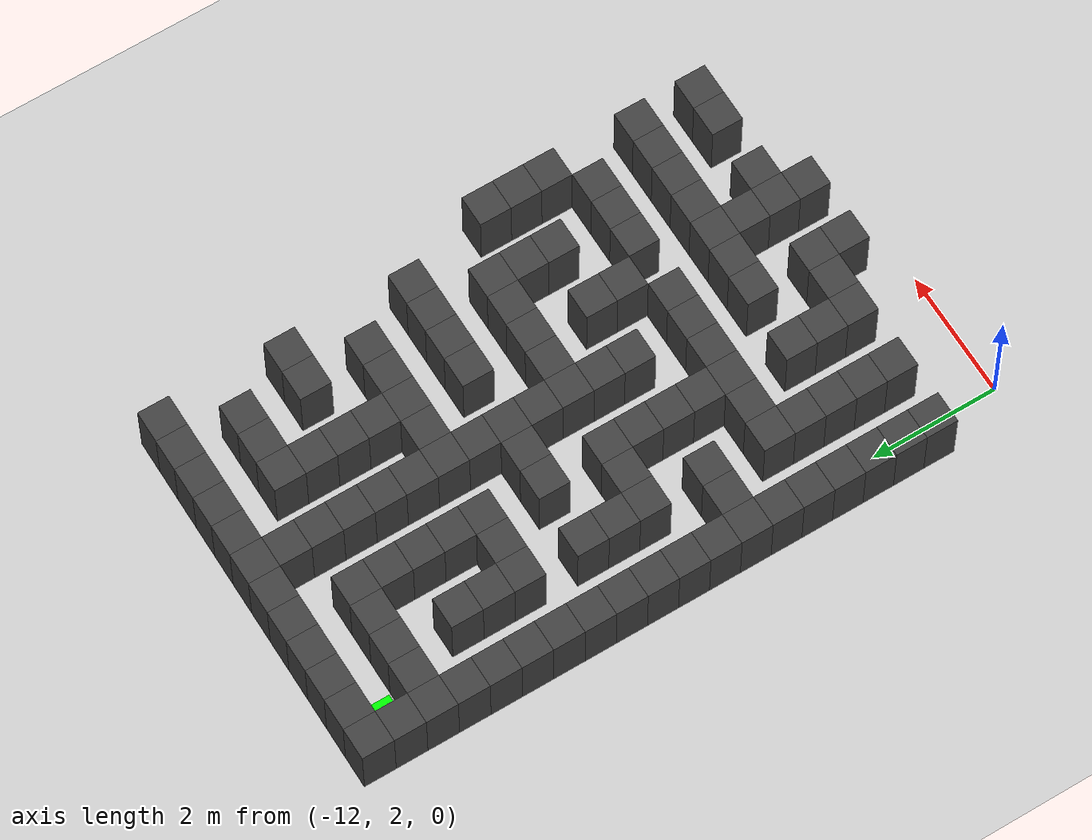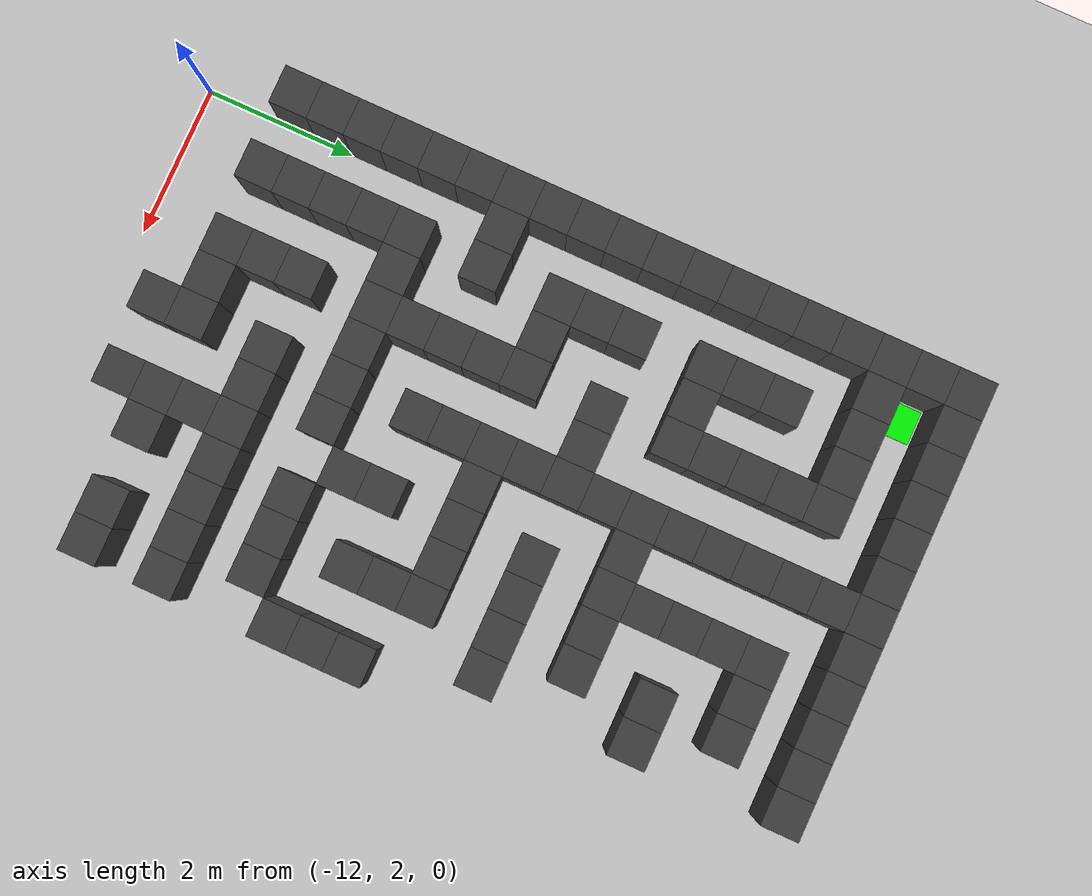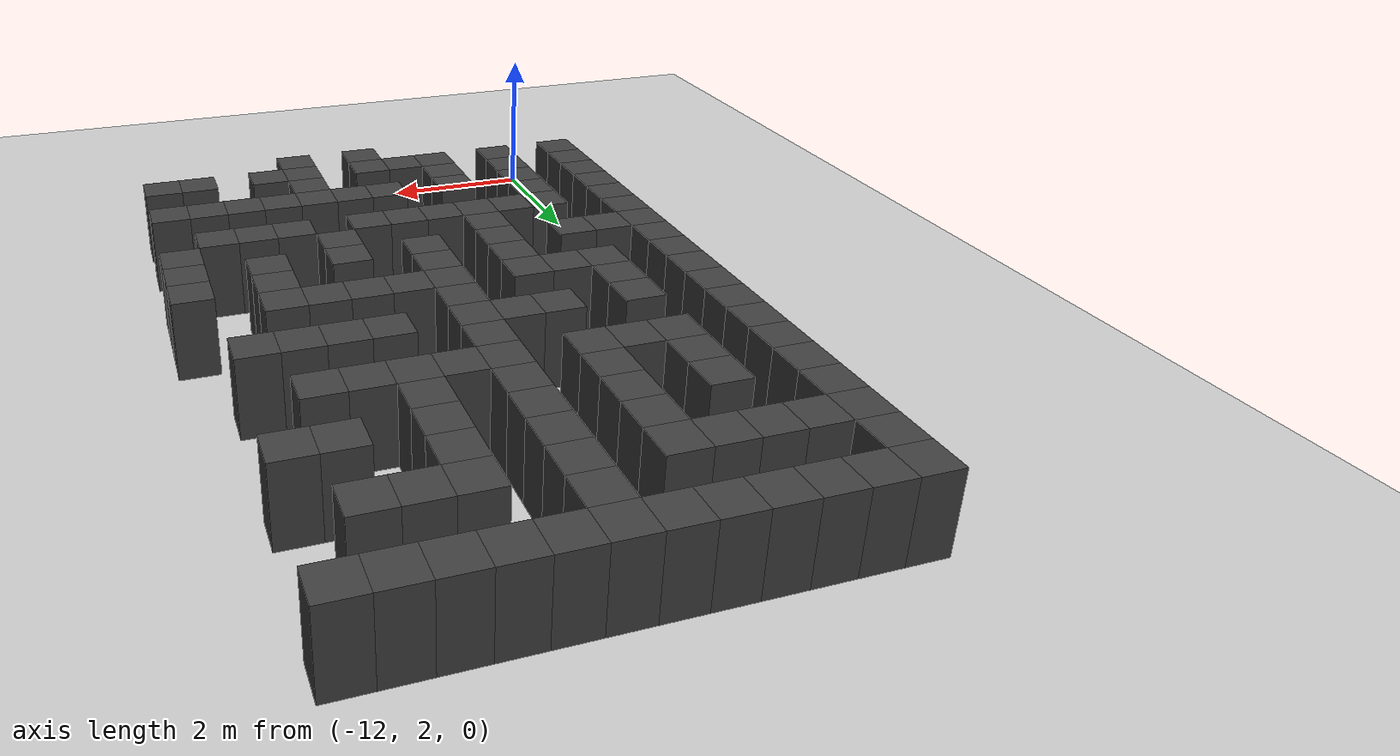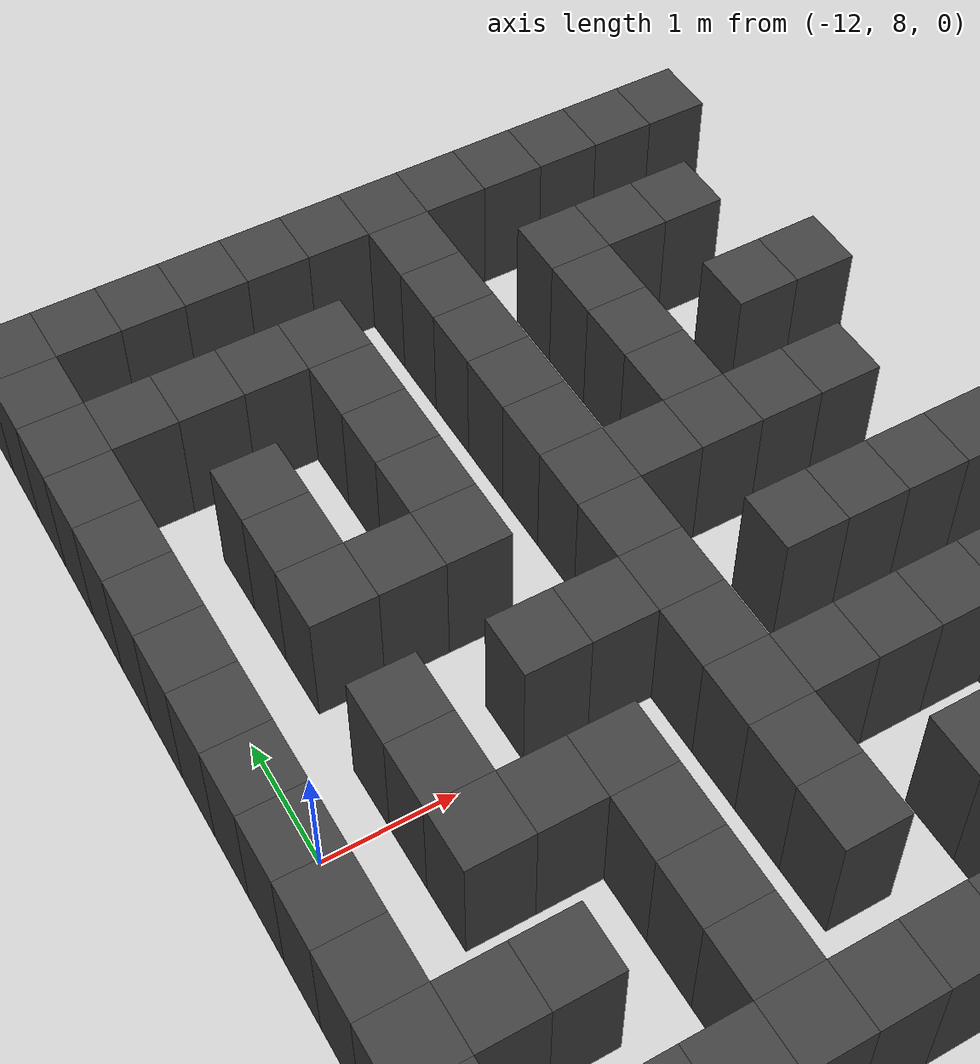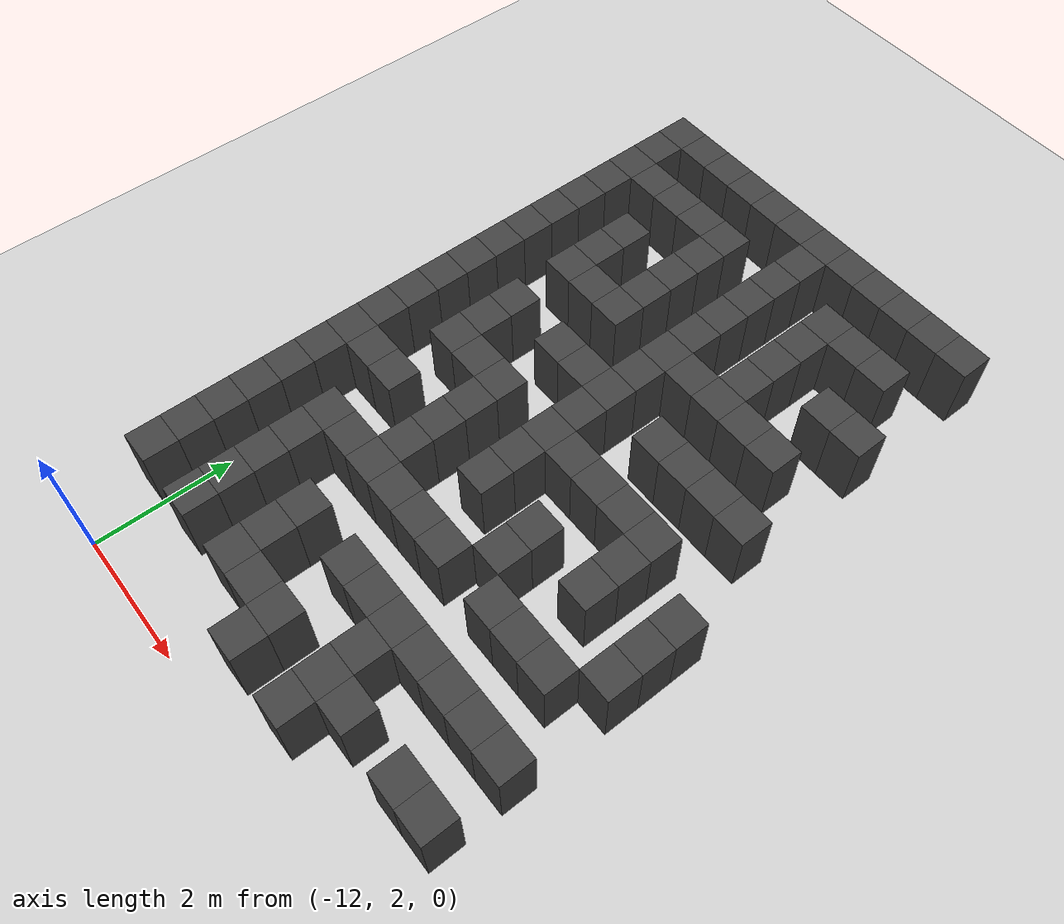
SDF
<sdf version="1.7">
 <world name="map_16884">
  <model name="ground_plane">
   <static>true</static>
   <link name="link">
    <collision name="collision">
     <geometry><plane><normal>0 0 1</normal><size>200 200</size></plane></geometry>
    </collision>
    <visual name="visual">
     <geometry><plane><normal>0 0 1</normal><size>200 200</size></plane></geometry>
     <material><ambient>0.8 0.8 0.8 1</ambient><diffuse>0.8 0.8 0.8 1</diffuse></material>
    </visual>
   </link>
  </model>
  <model name="maze_environment">
   <static>true</static>
   <link name="wall_0">
    <pose>-12.250 12.250 0.500 0 0 0</pose>
    <collision name="col"><geometry><box><size>0.5 0.5 1.0</size></box></geometry></collision>
    <visual name="vis">
     <geometry><box><size>0.5 0.5 1.0</size></box></geometry>
     <material><ambient>0.15 0.15 0.15 1</ambient><diffuse>0.25 0.25 0.25 1</diffuse></material>
    </visual>
   </link>
   <link name="wall_1">
    <pose>-11.750 12.250 0.500 0 0 0</pose>
    <collision name="col"><geometry><box><size>0.5 0.5 1.0</size></box></geometry></collision>
    <visual name="vis">
     <geometry><box><size>0.5 0.5 1.0</size></box></geometry>
     <material><ambient>0.15 0.15 0.15 1</ambient><diffuse>0.25 0.25 0.25 1</diffuse></material>
    </visual>
   </link>
   <link name="wall_2">
    <pose>-11.250 12.250 0.500 0 0 0</pose>
    <collision name="col"><geometry><box><size>0.5 0.5 1.0</size></box></geometry></collision>
    <visual name="vis">
     <geometry><box><size>0.5 0.5 1.0</size></box></geometry>
     <material><ambient>0.15 0.15 0.15 1</ambient><diffuse>0.25 0.25 0.25 1</diffuse></material>
    </visual>
   </link>
   <link name="wall_3">
    <pose>-10.750 12.250 0.500 0 0 0</pose>
    <collision name="col"><geometry><box><size>0.5 0.5 1.0</size></box></geometry></collision>
    <visual name="vis">
     <geometry><box><size>0.5 0.5 1.0</size></box></geometry>
     <material><ambient>0.15 0.15 0.15 1</ambient><diffuse>0.25 0.25 0.25 1</diffuse></material>
    </visual>
   </link>
   <link name="wall_4">
    <pose>-10.250 12.250 0.500 0 0 0</pose>
    <collision name="col"><geometry><box><size>0.5 0.5 1.0</size></box></geometry></collision>
    <visual name="vis">
     <geometry><box><size>0.5 0.5 1.0</size></box></geometry>
     <material><ambient>0.15 0.15 0.15 1</ambient><diffuse>0.25 0.25 0.25 1</diffuse></material>
    </visual>
   </link>
   <link name="wall_5">
    <pose>-9.750 12.250 0.500 0 0 0</pose>
    <collision name="col"><geometry><box><size>0.5 0.5 1.0</size></box></geometry></collision>
    <visual name="vis">
     <geometry><box><size>0.5 0.5 1.0</size></box></geometry>
     <material><ambient>0.15 0.15 0.15 1</ambient><diffuse>0.25 0.25 0.25 1</diffuse></material>
    </visual>
   </link>
   <link name="wall_6">
    <pose>-9.250 12.250 0.500 0 0 0</pose>
    <collision name="col"><geometry><box><size>0.5 0.5 1.0</size></box></geometry></collision>
    <visual name="vis">
     <geometry><box><size>0.5 0.5 1.0</size></box></geometry>
     <material><ambient>0.15 0.15 0.15 1</ambient><diffuse>0.25 0.25 0.25 1</diffuse></material>
    </visual>
   </link>
   <link name="wall_7">
    <pose>-8.750 12.250 0.500 0 0 0</pose>
    <collision name="col"><geometry><box><size>0.5 0.5 1.0</size></box></geometry></collision>
    <visual name="vis">
     <geometry><box><size>0.5 0.5 1.0</size></box></geometry>
     <material><ambient>0.15 0.15 0.15 1</ambient><diffuse>0.25 0.25 0.25 1</diffuse></material>
    </visual>
   </link>
   <link name="wall_8">
    <pose>-8.250 12.250 0.500 0 0 0</pose>
    <collision name="col"><geometry><box><size>0.5 0.5 1.0</size></box></geometry></collision>
    <visual name="vis">
     <geometry><box><size>0.5 0.5 1.0</size></box></geometry>
     <material><ambient>0.15 0.15 0.15 1</ambient><diffuse>0.25 0.25 0.25 1</diffuse></material>
    </visual>
   </link>
   <link name="wall_9">
    <pose>-7.750 12.250 0.500 0 0 0</pose>
    <collision name="col"><geometry><box><size>0.5 0.5 1.0</size></box></geometry></collision>
    <visual name="vis">
     <geometry><box><size>0.5 0.5 1.0</size></box></geometry>
     <material><ambient>0.15 0.15 0.15 1</ambient><diffuse>0.25 0.25 0.25 1</diffuse></material>
    </visual>
   </link>
   <link name="wall_10">
    <pose>-7.250 12.250 0.500 0 0 0</pose>
    <collision name="col"><geometry><box><size>0.5 0.5 1.0</size></box></geometry></collision>
    <visual name="vis">
     <geometry><box><size>0.5 0.5 1.0</size></box></geometry>
     <material><ambient>0.15 0.15 0.15 1</ambient><diffuse>0.25 0.25 0.25 1</diffuse></material>
    </visual>
   </link>
   <link name="wall_11">
    <pose>-6.750 12.250 0.500 0 0 0</pose>
    <collision name="col"><geometry><box><size>0.5 0.5 1.0</size></box></geometry></collision>
    <visual name="vis">
     <geometry><box><size>0.5 0.5 1.0</size></box></geometry>
     <material><ambient>0.15 0.15 0.15 1</ambient><diffuse>0.25 0.25 0.25 1</diffuse></material>
    </visual>
   </link>
   <link name="wall_50">
    <pose>-12.250 11.750 0.500 0 0 0</pose>
    <collision name="col"><geometry><box><size>0.5 0.5 1.0</size></box></geometry></collision>
    <visual name="vis">
     <geometry><box><size>0.5 0.5 1.0</size></box></geometry>
     <material><ambient>0.15 0.15 0.15 1</ambient><diffuse>0.25 0.25 0.25 1</diffuse></material>
    </visual>
   </link>
   <link name="wall_51">
    <pose>-9.250 11.750 0.500 0 0 0</pose>
    <collision name="col"><geometry><box><size>0.5 0.5 1.0</size></box></geometry></collision>
    <visual name="vis">
     <geometry><box><size>0.5 0.5 1.0</size></box></geometry>
     <material><ambient>0.15 0.15 0.15 1</ambient><diffuse>0.25 0.25 0.25 1</diffuse></material>
    </visual>
   </link>
   <link name="wall_58">
    <pose>-12.250 11.250 0.500 0 0 0</pose>
    <collision name="col"><geometry><box><size>0.5 0.5 1.0</size></box></geometry></collision>
    <visual name="vis">
     <geometry><box><size>0.5 0.5 1.0</size></box></geometry>
     <material><ambient>0.15 0.15 0.15 1</ambient><diffuse>0.25 0.25 0.25 1</diffuse></material>
    </visual>
   </link>
   <link name="wall_59">
    <pose>-11.750 11.250 0.500 0 0 0</pose>
    <collision name="col"><geometry><box><size>0.5 0.5 1.0</size></box></geometry></collision>
    <visual name="vis">
     <geometry><box><size>0.5 0.5 1.0</size></box></geometry>
     <material><ambient>0.15 0.15 0.15 1</ambient><diffuse>0.25 0.25 0.25 1</diffuse></material>
    </visual>
   </link>
   <link name="wall_60">
    <pose>-11.250 11.250 0.500 0 0 0</pose>
    <collision name="col"><geometry><box><size>0.5 0.5 1.0</size></box></geometry></collision>
    <visual name="vis">
     <geometry><box><size>0.5 0.5 1.0</size></box></geometry>
     <material><ambient>0.15 0.15 0.15 1</ambient><diffuse>0.25 0.25 0.25 1</diffuse></material>
    </visual>
   </link>
   <link name="wall_61">
    <pose>-10.750 11.250 0.500 0 0 0</pose>
    <collision name="col"><geometry><box><size>0.5 0.5 1.0</size></box></geometry></collision>
    <visual name="vis">
     <geometry><box><size>0.5 0.5 1.0</size></box></geometry>
     <material><ambient>0.15 0.15 0.15 1</ambient><diffuse>0.25 0.25 0.25 1</diffuse></material>
    </visual>
   </link>
   <link name="wall_62">
    <pose>-10.250 11.250 0.500 0 0 0</pose>
    <collision name="col"><geometry><box><size>0.5 0.5 1.0</size></box></geometry></collision>
    <visual name="vis">
     <geometry><box><size>0.5 0.5 1.0</size></box></geometry>
     <material><ambient>0.15 0.15 0.15 1</ambient><diffuse>0.25 0.25 0.25 1</diffuse></material>
    </visual>
   </link>
   <link name="wall_63">
    <pose>-9.250 11.250 0.500 0 0 0</pose>
    <collision name="col"><geometry><box><size>0.5 0.5 1.0</size></box></geometry></collision>
    <visual name="vis">
     <geometry><box><size>0.5 0.5 1.0</size></box></geometry>
     <material><ambient>0.15 0.15 0.15 1</ambient><diffuse>0.25 0.25 0.25 1</diffuse></material>
    </visual>
   </link>
   <link name="wall_64">
    <pose>-8.250 11.250 0.500 0 0 0</pose>
    <collision name="col"><geometry><box><size>0.5 0.5 1.0</size></box></geometry></collision>
    <visual name="vis">
     <geometry><box><size>0.5 0.5 1.0</size></box></geometry>
     <material><ambient>0.15 0.15 0.15 1</ambient><diffuse>0.25 0.25 0.25 1</diffuse></material>
    </visual>
   </link>
   <link name="wall_65">
    <pose>-7.750 11.250 0.500 0 0 0</pose>
    <collision name="col"><geometry><box><size>0.5 0.5 1.0</size></box></geometry></collision>
    <visual name="vis">
     <geometry><box><size>0.5 0.5 1.0</size></box></geometry>
     <material><ambient>0.15 0.15 0.15 1</ambient><diffuse>0.25 0.25 0.25 1</diffuse></material>
    </visual>
   </link>
   <link name="wall_66">
    <pose>-7.250 11.250 0.500 0 0 0</pose>
    <collision name="col"><geometry><box><size>0.5 0.5 1.0</size></box></geometry></collision>
    <visual name="vis">
     <geometry><box><size>0.5 0.5 1.0</size></box></geometry>
     <material><ambient>0.15 0.15 0.15 1</ambient><diffuse>0.25 0.25 0.25 1</diffuse></material>
    </visual>
   </link>
   <link name="wall_94">
    <pose>-12.250 10.750 0.500 0 0 0</pose>
    <collision name="col"><geometry><box><size>0.5 0.5 1.0</size></box></geometry></collision>
    <visual name="vis">
     <geometry><box><size>0.5 0.5 1.0</size></box></geometry>
     <material><ambient>0.15 0.15 0.15 1</ambient><diffuse>0.25 0.25 0.25 1</diffuse></material>
    </visual>
   </link>
   <link name="wall_95">
    <pose>-10.250 10.750 0.500 0 0 0</pose>
    <collision name="col"><geometry><box><size>0.5 0.5 1.0</size></box></geometry></collision>
    <visual name="vis">
     <geometry><box><size>0.5 0.5 1.0</size></box></geometry>
     <material><ambient>0.15 0.15 0.15 1</ambient><diffuse>0.25 0.25 0.25 1</diffuse></material>
    </visual>
   </link>
   <link name="wall_96">
    <pose>-9.250 10.750 0.500 0 0 0</pose>
    <collision name="col"><geometry><box><size>0.5 0.5 1.0</size></box></geometry></collision>
    <visual name="vis">
     <geometry><box><size>0.5 0.5 1.0</size></box></geometry>
     <material><ambient>0.15 0.15 0.15 1</ambient><diffuse>0.25 0.25 0.25 1</diffuse></material>
    </visual>
   </link>
   <link name="wall_97">
    <pose>-8.250 10.750 0.500 0 0 0</pose>
    <collision name="col"><geometry><box><size>0.5 0.5 1.0</size></box></geometry></collision>
    <visual name="vis">
     <geometry><box><size>0.5 0.5 1.0</size></box></geometry>
     <material><ambient>0.15 0.15 0.15 1</ambient><diffuse>0.25 0.25 0.25 1</diffuse></material>
    </visual>
   </link>
   <link name="wall_107">
    <pose>-12.250 10.250 0.500 0 0 0</pose>
    <collision name="col"><geometry><box><size>0.5 0.5 1.0</size></box></geometry></collision>
    <visual name="vis">
     <geometry><box><size>0.5 0.5 1.0</size></box></geometry>
     <material><ambient>0.15 0.15 0.15 1</ambient><diffuse>0.25 0.25 0.25 1</diffuse></material>
    </visual>
   </link>
   <link name="wall_108">
    <pose>-11.250 10.250 0.500 0 0 0</pose>
    <collision name="col"><geometry><box><size>0.5 0.5 1.0</size></box></geometry></collision>
    <visual name="vis">
     <geometry><box><size>0.5 0.5 1.0</size></box></geometry>
     <material><ambient>0.15 0.15 0.15 1</ambient><diffuse>0.25 0.25 0.25 1</diffuse></material>
    </visual>
   </link>
   <link name="wall_109">
    <pose>-10.250 10.250 0.500 0 0 0</pose>
    <collision name="col"><geometry><box><size>0.5 0.5 1.0</size></box></geometry></collision>
    <visual name="vis">
     <geometry><box><size>0.5 0.5 1.0</size></box></geometry>
     <material><ambient>0.15 0.15 0.15 1</ambient><diffuse>0.25 0.25 0.25 1</diffuse></material>
    </visual>
   </link>
   <link name="wall_110">
    <pose>-9.250 10.250 0.500 0 0 0</pose>
    <collision name="col"><geometry><box><size>0.5 0.5 1.0</size></box></geometry></collision>
    <visual name="vis">
     <geometry><box><size>0.5 0.5 1.0</size></box></geometry>
     <material><ambient>0.15 0.15 0.15 1</ambient><diffuse>0.25 0.25 0.25 1</diffuse></material>
    </visual>
   </link>
   <link name="wall_111">
    <pose>-8.250 10.250 0.500 0 0 0</pose>
    <collision name="col"><geometry><box><size>0.5 0.5 1.0</size></box></geometry></collision>
    <visual name="vis">
     <geometry><box><size>0.5 0.5 1.0</size></box></geometry>
     <material><ambient>0.15 0.15 0.15 1</ambient><diffuse>0.25 0.25 0.25 1</diffuse></material>
    </visual>
   </link>
   <link name="wall_112">
    <pose>-7.250 10.250 0.500 0 0 0</pose>
    <collision name="col"><geometry><box><size>0.5 0.5 1.0</size></box></geometry></collision>
    <visual name="vis">
     <geometry><box><size>0.5 0.5 1.0</size></box></geometry>
     <material><ambient>0.15 0.15 0.15 1</ambient><diffuse>0.25 0.25 0.25 1</diffuse></material>
    </visual>
   </link>
   <link name="wall_113">
    <pose>-6.750 10.250 0.500 0 0 0</pose>
    <collision name="col"><geometry><box><size>0.5 0.5 1.0</size></box></geometry></collision>
    <visual name="vis">
     <geometry><box><size>0.5 0.5 1.0</size></box></geometry>
     <material><ambient>0.15 0.15 0.15 1</ambient><diffuse>0.25 0.25 0.25 1</diffuse></material>
    </visual>
   </link>
   <link name="wall_142">
    <pose>-12.250 9.750 0.500 0 0 0</pose>
    <collision name="col"><geometry><box><size>0.5 0.5 1.0</size></box></geometry></collision>
    <visual name="vis">
     <geometry><box><size>0.5 0.5 1.0</size></box></geometry>
     <material><ambient>0.15 0.15 0.15 1</ambient><diffuse>0.25 0.25 0.25 1</diffuse></material>
    </visual>
   </link>
   <link name="wall_143">
    <pose>-11.250 9.750 0.500 0 0 0</pose>
    <collision name="col"><geometry><box><size>0.5 0.5 1.0</size></box></geometry></collision>
    <visual name="vis">
     <geometry><box><size>0.5 0.5 1.0</size></box></geometry>
     <material><ambient>0.15 0.15 0.15 1</ambient><diffuse>0.25 0.25 0.25 1</diffuse></material>
    </visual>
   </link>
   <link name="wall_144">
    <pose>-10.250 9.750 0.500 0 0 0</pose>
    <collision name="col"><geometry><box><size>0.5 0.5 1.0</size></box></geometry></collision>
    <visual name="vis">
     <geometry><box><size>0.5 0.5 1.0</size></box></geometry>
     <material><ambient>0.15 0.15 0.15 1</ambient><diffuse>0.25 0.25 0.25 1</diffuse></material>
    </visual>
   </link>
   <link name="wall_145">
    <pose>-9.250 9.750 0.500 0 0 0</pose>
    <collision name="col"><geometry><box><size>0.5 0.5 1.0</size></box></geometry></collision>
    <visual name="vis">
     <geometry><box><size>0.5 0.5 1.0</size></box></geometry>
     <material><ambient>0.15 0.15 0.15 1</ambient><diffuse>0.25 0.25 0.25 1</diffuse></material>
    </visual>
   </link>
   <link name="wall_146">
    <pose>-8.250 9.750 0.500 0 0 0</pose>
    <collision name="col"><geometry><box><size>0.5 0.5 1.0</size></box></geometry></collision>
    <visual name="vis">
     <geometry><box><size>0.5 0.5 1.0</size></box></geometry>
     <material><ambient>0.15 0.15 0.15 1</ambient><diffuse>0.25 0.25 0.25 1</diffuse></material>
    </visual>
   </link>
   <link name="wall_158">
    <pose>-12.250 9.250 0.500 0 0 0</pose>
    <collision name="col"><geometry><box><size>0.5 0.5 1.0</size></box></geometry></collision>
    <visual name="vis">
     <geometry><box><size>0.5 0.5 1.0</size></box></geometry>
     <material><ambient>0.15 0.15 0.15 1</ambient><diffuse>0.25 0.25 0.25 1</diffuse></material>
    </visual>
   </link>
   <link name="wall_159">
    <pose>-11.250 9.250 0.500 0 0 0</pose>
    <collision name="col"><geometry><box><size>0.5 0.5 1.0</size></box></geometry></collision>
    <visual name="vis">
     <geometry><box><size>0.5 0.5 1.0</size></box></geometry>
     <material><ambient>0.15 0.15 0.15 1</ambient><diffuse>0.25 0.25 0.25 1</diffuse></material>
    </visual>
   </link>
   <link name="wall_160">
    <pose>-10.750 9.250 0.500 0 0 0</pose>
    <collision name="col"><geometry><box><size>0.5 0.5 1.0</size></box></geometry></collision>
    <visual name="vis">
     <geometry><box><size>0.5 0.5 1.0</size></box></geometry>
     <material><ambient>0.15 0.15 0.15 1</ambient><diffuse>0.25 0.25 0.25 1</diffuse></material>
    </visual>
   </link>
   <link name="wall_161">
    <pose>-10.250 9.250 0.500 0 0 0</pose>
    <collision name="col"><geometry><box><size>0.5 0.5 1.0</size></box></geometry></collision>
    <visual name="vis">
     <geometry><box><size>0.5 0.5 1.0</size></box></geometry>
     <material><ambient>0.15 0.15 0.15 1</ambient><diffuse>0.25 0.25 0.25 1</diffuse></material>
    </visual>
   </link>
   <link name="wall_162">
    <pose>-9.250 9.250 0.500 0 0 0</pose>
    <collision name="col"><geometry><box><size>0.5 0.5 1.0</size></box></geometry></collision>
    <visual name="vis">
     <geometry><box><size>0.5 0.5 1.0</size></box></geometry>
     <material><ambient>0.15 0.15 0.15 1</ambient><diffuse>0.25 0.25 0.25 1</diffuse></material>
    </visual>
   </link>
   <link name="wall_163">
    <pose>-8.750 9.250 0.500 0 0 0</pose>
    <collision name="col"><geometry><box><size>0.5 0.5 1.0</size></box></geometry></collision>
    <visual name="vis">
     <geometry><box><size>0.5 0.5 1.0</size></box></geometry>
     <material><ambient>0.15 0.15 0.15 1</ambient><diffuse>0.25 0.25 0.25 1</diffuse></material>
    </visual>
   </link>
   <link name="wall_164">
    <pose>-8.250 9.250 0.500 0 0 0</pose>
    <collision name="col"><geometry><box><size>0.5 0.5 1.0</size></box></geometry></collision>
    <visual name="vis">
     <geometry><box><size>0.5 0.5 1.0</size></box></geometry>
     <material><ambient>0.15 0.15 0.15 1</ambient><diffuse>0.25 0.25 0.25 1</diffuse></material>
    </visual>
   </link>
   <link name="wall_165">
    <pose>-7.750 9.250 0.500 0 0 0</pose>
    <collision name="col"><geometry><box><size>0.5 0.5 1.0</size></box></geometry></collision>
    <visual name="vis">
     <geometry><box><size>0.5 0.5 1.0</size></box></geometry>
     <material><ambient>0.15 0.15 0.15 1</ambient><diffuse>0.25 0.25 0.25 1</diffuse></material>
    </visual>
   </link>
   <link name="wall_166">
    <pose>-7.250 9.250 0.500 0 0 0</pose>
    <collision name="col"><geometry><box><size>0.5 0.5 1.0</size></box></geometry></collision>
    <visual name="vis">
     <geometry><box><size>0.5 0.5 1.0</size></box></geometry>
     <material><ambient>0.15 0.15 0.15 1</ambient><diffuse>0.25 0.25 0.25 1</diffuse></material>
    </visual>
   </link>
   <link name="wall_194">
    <pose>-12.250 8.750 0.500 0 0 0</pose>
    <collision name="col"><geometry><box><size>0.5 0.5 1.0</size></box></geometry></collision>
    <visual name="vis">
     <geometry><box><size>0.5 0.5 1.0</size></box></geometry>
     <material><ambient>0.15 0.15 0.15 1</ambient><diffuse>0.25 0.25 0.25 1</diffuse></material>
    </visual>
   </link>
   <link name="wall_195">
    <pose>-9.250 8.750 0.500 0 0 0</pose>
    <collision name="col"><geometry><box><size>0.5 0.5 1.0</size></box></geometry></collision>
    <visual name="vis">
     <geometry><box><size>0.5 0.5 1.0</size></box></geometry>
     <material><ambient>0.15 0.15 0.15 1</ambient><diffuse>0.25 0.25 0.25 1</diffuse></material>
    </visual>
   </link>
   <link name="wall_207">
    <pose>-12.250 8.250 0.500 0 0 0</pose>
    <collision name="col"><geometry><box><size>0.5 0.5 1.0</size></box></geometry></collision>
    <visual name="vis">
     <geometry><box><size>0.5 0.5 1.0</size></box></geometry>
     <material><ambient>0.15 0.15 0.15 1</ambient><diffuse>0.25 0.25 0.25 1</diffuse></material>
    </visual>
   </link>
   <link name="wall_208">
    <pose>-11.250 8.250 0.500 0 0 0</pose>
    <collision name="col"><geometry><box><size>0.5 0.5 1.0</size></box></geometry></collision>
    <visual name="vis">
     <geometry><box><size>0.5 0.5 1.0</size></box></geometry>
     <material><ambient>0.15 0.15 0.15 1</ambient><diffuse>0.25 0.25 0.25 1</diffuse></material>
    </visual>
   </link>
   <link name="wall_209">
    <pose>-10.250 8.250 0.500 0 0 0</pose>
    <collision name="col"><geometry><box><size>0.5 0.5 1.0</size></box></geometry></collision>
    <visual name="vis">
     <geometry><box><size>0.5 0.5 1.0</size></box></geometry>
     <material><ambient>0.15 0.15 0.15 1</ambient><diffuse>0.25 0.25 0.25 1</diffuse></material>
    </visual>
   </link>
   <link name="wall_210">
    <pose>-9.750 8.250 0.500 0 0 0</pose>
    <collision name="col"><geometry><box><size>0.5 0.5 1.0</size></box></geometry></collision>
    <visual name="vis">
     <geometry><box><size>0.5 0.5 1.0</size></box></geometry>
     <material><ambient>0.15 0.15 0.15 1</ambient><diffuse>0.25 0.25 0.25 1</diffuse></material>
    </visual>
   </link>
   <link name="wall_211">
    <pose>-9.250 8.250 0.500 0 0 0</pose>
    <collision name="col"><geometry><box><size>0.5 0.5 1.0</size></box></geometry></collision>
    <visual name="vis">
     <geometry><box><size>0.5 0.5 1.0</size></box></geometry>
     <material><ambient>0.15 0.15 0.15 1</ambient><diffuse>0.25 0.25 0.25 1</diffuse></material>
    </visual>
   </link>
   <link name="wall_212">
    <pose>-8.250 8.250 0.500 0 0 0</pose>
    <collision name="col"><geometry><box><size>0.5 0.5 1.0</size></box></geometry></collision>
    <visual name="vis">
     <geometry><box><size>0.5 0.5 1.0</size></box></geometry>
     <material><ambient>0.15 0.15 0.15 1</ambient><diffuse>0.25 0.25 0.25 1</diffuse></material>
    </visual>
   </link>
   <link name="wall_213">
    <pose>-7.750 8.250 0.500 0 0 0</pose>
    <collision name="col"><geometry><box><size>0.5 0.5 1.0</size></box></geometry></collision>
    <visual name="vis">
     <geometry><box><size>0.5 0.5 1.0</size></box></geometry>
     <material><ambient>0.15 0.15 0.15 1</ambient><diffuse>0.25 0.25 0.25 1</diffuse></material>
    </visual>
   </link>
   <link name="wall_214">
    <pose>-7.250 8.250 0.500 0 0 0</pose>
    <collision name="col"><geometry><box><size>0.5 0.5 1.0</size></box></geometry></collision>
    <visual name="vis">
     <geometry><box><size>0.5 0.5 1.0</size></box></geometry>
     <material><ambient>0.15 0.15 0.15 1</ambient><diffuse>0.25 0.25 0.25 1</diffuse></material>
    </visual>
   </link>
   <link name="wall_215">
    <pose>-6.750 8.250 0.500 0 0 0</pose>
    <collision name="col"><geometry><box><size>0.5 0.5 1.0</size></box></geometry></collision>
    <visual name="vis">
     <geometry><box><size>0.5 0.5 1.0</size></box></geometry>
     <material><ambient>0.15 0.15 0.15 1</ambient><diffuse>0.25 0.25 0.25 1</diffuse></material>
    </visual>
   </link>
   <link name="wall_241">
    <pose>-12.250 7.750 0.500 0 0 0</pose>
    <collision name="col"><geometry><box><size>0.5 0.5 1.0</size></box></geometry></collision>
    <visual name="vis">
     <geometry><box><size>0.5 0.5 1.0</size></box></geometry>
     <material><ambient>0.15 0.15 0.15 1</ambient><diffuse>0.25 0.25 0.25 1</diffuse></material>
    </visual>
   </link>
   <link name="wall_242">
    <pose>-11.250 7.750 0.500 0 0 0</pose>
    <collision name="col"><geometry><box><size>0.5 0.5 1.0</size></box></geometry></collision>
    <visual name="vis">
     <geometry><box><size>0.5 0.5 1.0</size></box></geometry>
     <material><ambient>0.15 0.15 0.15 1</ambient><diffuse>0.25 0.25 0.25 1</diffuse></material>
    </visual>
   </link>
   <link name="wall_243">
    <pose>-9.250 7.750 0.500 0 0 0</pose>
    <collision name="col"><geometry><box><size>0.5 0.5 1.0</size></box></geometry></collision>
    <visual name="vis">
     <geometry><box><size>0.5 0.5 1.0</size></box></geometry>
     <material><ambient>0.15 0.15 0.15 1</ambient><diffuse>0.25 0.25 0.25 1</diffuse></material>
    </visual>
   </link>
   <link name="wall_256">
    <pose>-12.250 7.250 0.500 0 0 0</pose>
    <collision name="col"><geometry><box><size>0.5 0.5 1.0</size></box></geometry></collision>
    <visual name="vis">
     <geometry><box><size>0.5 0.5 1.0</size></box></geometry>
     <material><ambient>0.15 0.15 0.15 1</ambient><diffuse>0.25 0.25 0.25 1</diffuse></material>
    </visual>
   </link>
   <link name="wall_257">
    <pose>-11.250 7.250 0.500 0 0 0</pose>
    <collision name="col"><geometry><box><size>0.5 0.5 1.0</size></box></geometry></collision>
    <visual name="vis">
     <geometry><box><size>0.5 0.5 1.0</size></box></geometry>
     <material><ambient>0.15 0.15 0.15 1</ambient><diffuse>0.25 0.25 0.25 1</diffuse></material>
    </visual>
   </link>
   <link name="wall_258">
    <pose>-10.750 7.250 0.500 0 0 0</pose>
    <collision name="col"><geometry><box><size>0.5 0.5 1.0</size></box></geometry></collision>
    <visual name="vis">
     <geometry><box><size>0.5 0.5 1.0</size></box></geometry>
     <material><ambient>0.15 0.15 0.15 1</ambient><diffuse>0.25 0.25 0.25 1</diffuse></material>
    </visual>
   </link>
   <link name="wall_259">
    <pose>-10.250 7.250 0.500 0 0 0</pose>
    <collision name="col"><geometry><box><size>0.5 0.5 1.0</size></box></geometry></collision>
    <visual name="vis">
     <geometry><box><size>0.5 0.5 1.0</size></box></geometry>
     <material><ambient>0.15 0.15 0.15 1</ambient><diffuse>0.25 0.25 0.25 1</diffuse></material>
    </visual>
   </link>
   <link name="wall_260">
    <pose>-9.250 7.250 0.500 0 0 0</pose>
    <collision name="col"><geometry><box><size>0.5 0.5 1.0</size></box></geometry></collision>
    <visual name="vis">
     <geometry><box><size>0.5 0.5 1.0</size></box></geometry>
     <material><ambient>0.15 0.15 0.15 1</ambient><diffuse>0.25 0.25 0.25 1</diffuse></material>
    </visual>
   </link>
   <link name="wall_261">
    <pose>-8.750 7.250 0.500 0 0 0</pose>
    <collision name="col"><geometry><box><size>0.5 0.5 1.0</size></box></geometry></collision>
    <visual name="vis">
     <geometry><box><size>0.5 0.5 1.0</size></box></geometry>
     <material><ambient>0.15 0.15 0.15 1</ambient><diffuse>0.25 0.25 0.25 1</diffuse></material>
    </visual>
   </link>
   <link name="wall_262">
    <pose>-8.250 7.250 0.500 0 0 0</pose>
    <collision name="col"><geometry><box><size>0.5 0.5 1.0</size></box></geometry></collision>
    <visual name="vis">
     <geometry><box><size>0.5 0.5 1.0</size></box></geometry>
     <material><ambient>0.15 0.15 0.15 1</ambient><diffuse>0.25 0.25 0.25 1</diffuse></material>
    </visual>
   </link>
   <link name="wall_263">
    <pose>-7.750 7.250 0.500 0 0 0</pose>
    <collision name="col"><geometry><box><size>0.5 0.5 1.0</size></box></geometry></collision>
    <visual name="vis">
     <geometry><box><size>0.5 0.5 1.0</size></box></geometry>
     <material><ambient>0.15 0.15 0.15 1</ambient><diffuse>0.25 0.25 0.25 1</diffuse></material>
    </visual>
   </link>
   <link name="wall_264">
    <pose>-7.250 7.250 0.500 0 0 0</pose>
    <collision name="col"><geometry><box><size>0.5 0.5 1.0</size></box></geometry></collision>
    <visual name="vis">
     <geometry><box><size>0.5 0.5 1.0</size></box></geometry>
     <material><ambient>0.15 0.15 0.15 1</ambient><diffuse>0.25 0.25 0.25 1</diffuse></material>
    </visual>
   </link>
   <link name="wall_291">
    <pose>-12.250 6.750 0.500 0 0 0</pose>
    <collision name="col"><geometry><box><size>0.5 0.5 1.0</size></box></geometry></collision>
    <visual name="vis">
     <geometry><box><size>0.5 0.5 1.0</size></box></geometry>
     <material><ambient>0.15 0.15 0.15 1</ambient><diffuse>0.25 0.25 0.25 1</diffuse></material>
    </visual>
   </link>
   <link name="wall_292">
    <pose>-10.250 6.750 0.500 0 0 0</pose>
    <collision name="col"><geometry><box><size>0.5 0.5 1.0</size></box></geometry></collision>
    <visual name="vis">
     <geometry><box><size>0.5 0.5 1.0</size></box></geometry>
     <material><ambient>0.15 0.15 0.15 1</ambient><diffuse>0.25 0.25 0.25 1</diffuse></material>
    </visual>
   </link>
   <link name="wall_293">
    <pose>-9.250 6.750 0.500 0 0 0</pose>
    <collision name="col"><geometry><box><size>0.5 0.5 1.0</size></box></geometry></collision>
    <visual name="vis">
     <geometry><box><size>0.5 0.5 1.0</size></box></geometry>
     <material><ambient>0.15 0.15 0.15 1</ambient><diffuse>0.25 0.25 0.25 1</diffuse></material>
    </visual>
   </link>
   <link name="wall_294">
    <pose>-7.250 6.750 0.500 0 0 0</pose>
    <collision name="col"><geometry><box><size>0.5 0.5 1.0</size></box></geometry></collision>
    <visual name="vis">
     <geometry><box><size>0.5 0.5 1.0</size></box></geometry>
     <material><ambient>0.15 0.15 0.15 1</ambient><diffuse>0.25 0.25 0.25 1</diffuse></material>
    </visual>
   </link>
   <link name="wall_295">
    <pose>-6.250 6.750 0.500 0 0 0</pose>
    <collision name="col"><geometry><box><size>0.5 0.5 1.0</size></box></geometry></collision>
    <visual name="vis">
     <geometry><box><size>0.5 0.5 1.0</size></box></geometry>
     <material><ambient>0.15 0.15 0.15 1</ambient><diffuse>0.25 0.25 0.25 1</diffuse></material>
    </visual>
   </link>
   <link name="wall_305">
    <pose>-12.250 6.250 0.500 0 0 0</pose>
    <collision name="col"><geometry><box><size>0.5 0.5 1.0</size></box></geometry></collision>
    <visual name="vis">
     <geometry><box><size>0.5 0.5 1.0</size></box></geometry>
     <material><ambient>0.15 0.15 0.15 1</ambient><diffuse>0.25 0.25 0.25 1</diffuse></material>
    </visual>
   </link>
   <link name="wall_306">
    <pose>-11.750 6.250 0.500 0 0 0</pose>
    <collision name="col"><geometry><box><size>0.5 0.5 1.0</size></box></geometry></collision>
    <visual name="vis">
     <geometry><box><size>0.5 0.5 1.0</size></box></geometry>
     <material><ambient>0.15 0.15 0.15 1</ambient><diffuse>0.25 0.25 0.25 1</diffuse></material>
    </visual>
   </link>
   <link name="wall_307">
    <pose>-11.250 6.250 0.500 0 0 0</pose>
    <collision name="col"><geometry><box><size>0.5 0.5 1.0</size></box></geometry></collision>
    <visual name="vis">
     <geometry><box><size>0.5 0.5 1.0</size></box></geometry>
     <material><ambient>0.15 0.15 0.15 1</ambient><diffuse>0.25 0.25 0.25 1</diffuse></material>
    </visual>
   </link>
   <link name="wall_308">
    <pose>-10.250 6.250 0.500 0 0 0</pose>
    <collision name="col"><geometry><box><size>0.5 0.5 1.0</size></box></geometry></collision>
    <visual name="vis">
     <geometry><box><size>0.5 0.5 1.0</size></box></geometry>
     <material><ambient>0.15 0.15 0.15 1</ambient><diffuse>0.25 0.25 0.25 1</diffuse></material>
    </visual>
   </link>
   <link name="wall_309">
    <pose>-9.250 6.250 0.500 0 0 0</pose>
    <collision name="col"><geometry><box><size>0.5 0.5 1.0</size></box></geometry></collision>
    <visual name="vis">
     <geometry><box><size>0.5 0.5 1.0</size></box></geometry>
     <material><ambient>0.15 0.15 0.15 1</ambient><diffuse>0.25 0.25 0.25 1</diffuse></material>
    </visual>
   </link>
   <link name="wall_310">
    <pose>-8.250 6.250 0.500 0 0 0</pose>
    <collision name="col"><geometry><box><size>0.5 0.5 1.0</size></box></geometry></collision>
    <visual name="vis">
     <geometry><box><size>0.5 0.5 1.0</size></box></geometry>
     <material><ambient>0.15 0.15 0.15 1</ambient><diffuse>0.25 0.25 0.25 1</diffuse></material>
    </visual>
   </link>
   <link name="wall_311">
    <pose>-7.250 6.250 0.500 0 0 0</pose>
    <collision name="col"><geometry><box><size>0.5 0.5 1.0</size></box></geometry></collision>
    <visual name="vis">
     <geometry><box><size>0.5 0.5 1.0</size></box></geometry>
     <material><ambient>0.15 0.15 0.15 1</ambient><diffuse>0.25 0.25 0.25 1</diffuse></material>
    </visual>
   </link>
   <link name="wall_312">
    <pose>-6.250 6.250 0.500 0 0 0</pose>
    <collision name="col"><geometry><box><size>0.5 0.5 1.0</size></box></geometry></collision>
    <visual name="vis">
     <geometry><box><size>0.5 0.5 1.0</size></box></geometry>
     <material><ambient>0.15 0.15 0.15 1</ambient><diffuse>0.25 0.25 0.25 1</diffuse></material>
    </visual>
   </link>
   <link name="wall_335">
    <pose>-12.250 5.750 0.500 0 0 0</pose>
    <collision name="col"><geometry><box><size>0.5 0.5 1.0</size></box></geometry></collision>
    <visual name="vis">
     <geometry><box><size>0.5 0.5 1.0</size></box></geometry>
     <material><ambient>0.15 0.15 0.15 1</ambient><diffuse>0.25 0.25 0.25 1</diffuse></material>
    </visual>
   </link>
   <link name="wall_336">
    <pose>-10.250 5.750 0.500 0 0 0</pose>
    <collision name="col"><geometry><box><size>0.5 0.5 1.0</size></box></geometry></collision>
    <visual name="vis">
     <geometry><box><size>0.5 0.5 1.0</size></box></geometry>
     <material><ambient>0.15 0.15 0.15 1</ambient><diffuse>0.25 0.25 0.25 1</diffuse></material>
    </visual>
   </link>
   <link name="wall_337">
    <pose>-8.250 5.750 0.500 0 0 0</pose>
    <collision name="col"><geometry><box><size>0.5 0.5 1.0</size></box></geometry></collision>
    <visual name="vis">
     <geometry><box><size>0.5 0.5 1.0</size></box></geometry>
     <material><ambient>0.15 0.15 0.15 1</ambient><diffuse>0.25 0.25 0.25 1</diffuse></material>
    </visual>
   </link>
   <link name="wall_338">
    <pose>-6.250 5.750 0.500 0 0 0</pose>
    <collision name="col"><geometry><box><size>0.5 0.5 1.0</size></box></geometry></collision>
    <visual name="vis">
     <geometry><box><size>0.5 0.5 1.0</size></box></geometry>
     <material><ambient>0.15 0.15 0.15 1</ambient><diffuse>0.25 0.25 0.25 1</diffuse></material>
    </visual>
   </link>
   <link name="wall_351">
    <pose>-12.250 5.250 0.500 0 0 0</pose>
    <collision name="col"><geometry><box><size>0.5 0.5 1.0</size></box></geometry></collision>
    <visual name="vis">
     <geometry><box><size>0.5 0.5 1.0</size></box></geometry>
     <material><ambient>0.15 0.15 0.15 1</ambient><diffuse>0.25 0.25 0.25 1</diffuse></material>
    </visual>
   </link>
   <link name="wall_352">
    <pose>-11.250 5.250 0.500 0 0 0</pose>
    <collision name="col"><geometry><box><size>0.5 0.5 1.0</size></box></geometry></collision>
    <visual name="vis">
     <geometry><box><size>0.5 0.5 1.0</size></box></geometry>
     <material><ambient>0.15 0.15 0.15 1</ambient><diffuse>0.25 0.25 0.25 1</diffuse></material>
    </visual>
   </link>
   <link name="wall_353">
    <pose>-10.750 5.250 0.500 0 0 0</pose>
    <collision name="col"><geometry><box><size>0.5 0.5 1.0</size></box></geometry></collision>
    <visual name="vis">
     <geometry><box><size>0.5 0.5 1.0</size></box></geometry>
     <material><ambient>0.15 0.15 0.15 1</ambient><diffuse>0.25 0.25 0.25 1</diffuse></material>
    </visual>
   </link>
   <link name="wall_354">
    <pose>-10.250 5.250 0.500 0 0 0</pose>
    <collision name="col"><geometry><box><size>0.5 0.5 1.0</size></box></geometry></collision>
    <visual name="vis">
     <geometry><box><size>0.5 0.5 1.0</size></box></geometry>
     <material><ambient>0.15 0.15 0.15 1</ambient><diffuse>0.25 0.25 0.25 1</diffuse></material>
    </visual>
   </link>
   <link name="wall_355">
    <pose>-9.750 5.250 0.500 0 0 0</pose>
    <collision name="col"><geometry><box><size>0.5 0.5 1.0</size></box></geometry></collision>
    <visual name="vis">
     <geometry><box><size>0.5 0.5 1.0</size></box></geometry>
     <material><ambient>0.15 0.15 0.15 1</ambient><diffuse>0.25 0.25 0.25 1</diffuse></material>
    </visual>
   </link>
   <link name="wall_356">
    <pose>-9.250 5.250 0.500 0 0 0</pose>
    <collision name="col"><geometry><box><size>0.5 0.5 1.0</size></box></geometry></collision>
    <visual name="vis">
     <geometry><box><size>0.5 0.5 1.0</size></box></geometry>
     <material><ambient>0.15 0.15 0.15 1</ambient><diffuse>0.25 0.25 0.25 1</diffuse></material>
    </visual>
   </link>
   <link name="wall_357">
    <pose>-8.750 5.250 0.500 0 0 0</pose>
    <collision name="col"><geometry><box><size>0.5 0.5 1.0</size></box></geometry></collision>
    <visual name="vis">
     <geometry><box><size>0.5 0.5 1.0</size></box></geometry>
     <material><ambient>0.15 0.15 0.15 1</ambient><diffuse>0.25 0.25 0.25 1</diffuse></material>
    </visual>
   </link>
   <link name="wall_358">
    <pose>-7.750 5.250 0.500 0 0 0</pose>
    <collision name="col"><geometry><box><size>0.5 0.5 1.0</size></box></geometry></collision>
    <visual name="vis">
     <geometry><box><size>0.5 0.5 1.0</size></box></geometry>
     <material><ambient>0.15 0.15 0.15 1</ambient><diffuse>0.25 0.25 0.25 1</diffuse></material>
    </visual>
   </link>
   <link name="wall_359">
    <pose>-7.250 5.250 0.500 0 0 0</pose>
    <collision name="col"><geometry><box><size>0.5 0.5 1.0</size></box></geometry></collision>
    <visual name="vis">
     <geometry><box><size>0.5 0.5 1.0</size></box></geometry>
     <material><ambient>0.15 0.15 0.15 1</ambient><diffuse>0.25 0.25 0.25 1</diffuse></material>
    </visual>
   </link>
   <link name="wall_360">
    <pose>-6.750 5.250 0.500 0 0 0</pose>
    <collision name="col"><geometry><box><size>0.5 0.5 1.0</size></box></geometry></collision>
    <visual name="vis">
     <geometry><box><size>0.5 0.5 1.0</size></box></geometry>
     <material><ambient>0.15 0.15 0.15 1</ambient><diffuse>0.25 0.25 0.25 1</diffuse></material>
    </visual>
   </link>
   <link name="wall_386">
    <pose>-12.250 4.750 0.500 0 0 0</pose>
    <collision name="col"><geometry><box><size>0.5 0.5 1.0</size></box></geometry></collision>
    <visual name="vis">
     <geometry><box><size>0.5 0.5 1.0</size></box></geometry>
     <material><ambient>0.15 0.15 0.15 1</ambient><diffuse>0.25 0.25 0.25 1</diffuse></material>
    </visual>
   </link>
   <link name="wall_387">
    <pose>-11.250 4.750 0.500 0 0 0</pose>
    <collision name="col"><geometry><box><size>0.5 0.5 1.0</size></box></geometry></collision>
    <visual name="vis">
     <geometry><box><size>0.5 0.5 1.0</size></box></geometry>
     <material><ambient>0.15 0.15 0.15 1</ambient><diffuse>0.25 0.25 0.25 1</diffuse></material>
    </visual>
   </link>
   <link name="wall_399">
    <pose>-12.250 4.250 0.500 0 0 0</pose>
    <collision name="col"><geometry><box><size>0.5 0.5 1.0</size></box></geometry></collision>
    <visual name="vis">
     <geometry><box><size>0.5 0.5 1.0</size></box></geometry>
     <material><ambient>0.15 0.15 0.15 1</ambient><diffuse>0.25 0.25 0.25 1</diffuse></material>
    </visual>
   </link>
   <link name="wall_400">
    <pose>-11.250 4.250 0.500 0 0 0</pose>
    <collision name="col"><geometry><box><size>0.5 0.5 1.0</size></box></geometry></collision>
    <visual name="vis">
     <geometry><box><size>0.5 0.5 1.0</size></box></geometry>
     <material><ambient>0.15 0.15 0.15 1</ambient><diffuse>0.25 0.25 0.25 1</diffuse></material>
    </visual>
   </link>
   <link name="wall_401">
    <pose>-10.250 4.250 0.500 0 0 0</pose>
    <collision name="col"><geometry><box><size>0.5 0.5 1.0</size></box></geometry></collision>
    <visual name="vis">
     <geometry><box><size>0.5 0.5 1.0</size></box></geometry>
     <material><ambient>0.15 0.15 0.15 1</ambient><diffuse>0.25 0.25 0.25 1</diffuse></material>
    </visual>
   </link>
   <link name="wall_402">
    <pose>-9.250 4.250 0.500 0 0 0</pose>
    <collision name="col"><geometry><box><size>0.5 0.5 1.0</size></box></geometry></collision>
    <visual name="vis">
     <geometry><box><size>0.5 0.5 1.0</size></box></geometry>
     <material><ambient>0.15 0.15 0.15 1</ambient><diffuse>0.25 0.25 0.25 1</diffuse></material>
    </visual>
   </link>
   <link name="wall_403">
    <pose>-8.750 4.250 0.500 0 0 0</pose>
    <collision name="col"><geometry><box><size>0.5 0.5 1.0</size></box></geometry></collision>
    <visual name="vis">
     <geometry><box><size>0.5 0.5 1.0</size></box></geometry>
     <material><ambient>0.15 0.15 0.15 1</ambient><diffuse>0.25 0.25 0.25 1</diffuse></material>
    </visual>
   </link>
   <link name="wall_404">
    <pose>-8.250 4.250 0.500 0 0 0</pose>
    <collision name="col"><geometry><box><size>0.5 0.5 1.0</size></box></geometry></collision>
    <visual name="vis">
     <geometry><box><size>0.5 0.5 1.0</size></box></geometry>
     <material><ambient>0.15 0.15 0.15 1</ambient><diffuse>0.25 0.25 0.25 1</diffuse></material>
    </visual>
   </link>
   <link name="wall_405">
    <pose>-7.750 4.250 0.500 0 0 0</pose>
    <collision name="col"><geometry><box><size>0.5 0.5 1.0</size></box></geometry></collision>
    <visual name="vis">
     <geometry><box><size>0.5 0.5 1.0</size></box></geometry>
     <material><ambient>0.15 0.15 0.15 1</ambient><diffuse>0.25 0.25 0.25 1</diffuse></material>
    </visual>
   </link>
   <link name="wall_406">
    <pose>-7.250 4.250 0.500 0 0 0</pose>
    <collision name="col"><geometry><box><size>0.5 0.5 1.0</size></box></geometry></collision>
    <visual name="vis">
     <geometry><box><size>0.5 0.5 1.0</size></box></geometry>
     <material><ambient>0.15 0.15 0.15 1</ambient><diffuse>0.25 0.25 0.25 1</diffuse></material>
    </visual>
   </link>
   <link name="wall_407">
    <pose>-6.750 4.250 0.500 0 0 0</pose>
    <collision name="col"><geometry><box><size>0.5 0.5 1.0</size></box></geometry></collision>
    <visual name="vis">
     <geometry><box><size>0.5 0.5 1.0</size></box></geometry>
     <material><ambient>0.15 0.15 0.15 1</ambient><diffuse>0.25 0.25 0.25 1</diffuse></material>
    </visual>
   </link>
   <link name="wall_408">
    <pose>-6.250 4.250 0.500 0 0 0</pose>
    <collision name="col"><geometry><box><size>0.5 0.5 1.0</size></box></geometry></collision>
    <visual name="vis">
     <geometry><box><size>0.5 0.5 1.0</size></box></geometry>
     <material><ambient>0.15 0.15 0.15 1</ambient><diffuse>0.25 0.25 0.25 1</diffuse></material>
    </visual>
   </link>
   <link name="wall_435">
    <pose>-12.250 3.750 0.500 0 0 0</pose>
    <collision name="col"><geometry><box><size>0.5 0.5 1.0</size></box></geometry></collision>
    <visual name="vis">
     <geometry><box><size>0.5 0.5 1.0</size></box></geometry>
     <material><ambient>0.15 0.15 0.15 1</ambient><diffuse>0.25 0.25 0.25 1</diffuse></material>
    </visual>
   </link>
   <link name="wall_436">
    <pose>-11.250 3.750 0.500 0 0 0</pose>
    <collision name="col"><geometry><box><size>0.5 0.5 1.0</size></box></geometry></collision>
    <visual name="vis">
     <geometry><box><size>0.5 0.5 1.0</size></box></geometry>
     <material><ambient>0.15 0.15 0.15 1</ambient><diffuse>0.25 0.25 0.25 1</diffuse></material>
    </visual>
   </link>
   <link name="wall_437">
    <pose>-10.250 3.750 0.500 0 0 0</pose>
    <collision name="col"><geometry><box><size>0.5 0.5 1.0</size></box></geometry></collision>
    <visual name="vis">
     <geometry><box><size>0.5 0.5 1.0</size></box></geometry>
     <material><ambient>0.15 0.15 0.15 1</ambient><diffuse>0.25 0.25 0.25 1</diffuse></material>
    </visual>
   </link>
   <link name="wall_438">
    <pose>-8.250 3.750 0.500 0 0 0</pose>
    <collision name="col"><geometry><box><size>0.5 0.5 1.0</size></box></geometry></collision>
    <visual name="vis">
     <geometry><box><size>0.5 0.5 1.0</size></box></geometry>
     <material><ambient>0.15 0.15 0.15 1</ambient><diffuse>0.25 0.25 0.25 1</diffuse></material>
    </visual>
   </link>
   <link name="wall_447">
    <pose>-12.250 3.250 0.500 0 0 0</pose>
    <collision name="col"><geometry><box><size>0.5 0.5 1.0</size></box></geometry></collision>
    <visual name="vis">
     <geometry><box><size>0.5 0.5 1.0</size></box></geometry>
     <material><ambient>0.15 0.15 0.15 1</ambient><diffuse>0.25 0.25 0.25 1</diffuse></material>
    </visual>
   </link>
   <link name="wall_448">
    <pose>-11.250 3.250 0.500 0 0 0</pose>
    <collision name="col"><geometry><box><size>0.5 0.5 1.0</size></box></geometry></collision>
    <visual name="vis">
     <geometry><box><size>0.5 0.5 1.0</size></box></geometry>
     <material><ambient>0.15 0.15 0.15 1</ambient><diffuse>0.25 0.25 0.25 1</diffuse></material>
    </visual>
   </link>
   <link name="wall_449">
    <pose>-10.250 3.250 0.500 0 0 0</pose>
    <collision name="col"><geometry><box><size>0.5 0.5 1.0</size></box></geometry></collision>
    <visual name="vis">
     <geometry><box><size>0.5 0.5 1.0</size></box></geometry>
     <material><ambient>0.15 0.15 0.15 1</ambient><diffuse>0.25 0.25 0.25 1</diffuse></material>
    </visual>
   </link>
   <link name="wall_450">
    <pose>-9.750 3.250 0.500 0 0 0</pose>
    <collision name="col"><geometry><box><size>0.5 0.5 1.0</size></box></geometry></collision>
    <visual name="vis">
     <geometry><box><size>0.5 0.5 1.0</size></box></geometry>
     <material><ambient>0.15 0.15 0.15 1</ambient><diffuse>0.25 0.25 0.25 1</diffuse></material>
    </visual>
   </link>
   <link name="wall_451">
    <pose>-9.250 3.250 0.500 0 0 0</pose>
    <collision name="col"><geometry><box><size>0.5 0.5 1.0</size></box></geometry></collision>
    <visual name="vis">
     <geometry><box><size>0.5 0.5 1.0</size></box></geometry>
     <material><ambient>0.15 0.15 0.15 1</ambient><diffuse>0.25 0.25 0.25 1</diffuse></material>
    </visual>
   </link>
   <link name="wall_452">
    <pose>-8.250 3.250 0.500 0 0 0</pose>
    <collision name="col"><geometry><box><size>0.5 0.5 1.0</size></box></geometry></collision>
    <visual name="vis">
     <geometry><box><size>0.5 0.5 1.0</size></box></geometry>
     <material><ambient>0.15 0.15 0.15 1</ambient><diffuse>0.25 0.25 0.25 1</diffuse></material>
    </visual>
   </link>
   <link name="wall_453">
    <pose>-7.750 3.250 0.500 0 0 0</pose>
    <collision name="col"><geometry><box><size>0.5 0.5 1.0</size></box></geometry></collision>
    <visual name="vis">
     <geometry><box><size>0.5 0.5 1.0</size></box></geometry>
     <material><ambient>0.15 0.15 0.15 1</ambient><diffuse>0.25 0.25 0.25 1</diffuse></material>
    </visual>
   </link>
   <link name="wall_454">
    <pose>-6.750 3.250 0.500 0 0 0</pose>
    <collision name="col"><geometry><box><size>0.5 0.5 1.0</size></box></geometry></collision>
    <visual name="vis">
     <geometry><box><size>0.5 0.5 1.0</size></box></geometry>
     <material><ambient>0.15 0.15 0.15 1</ambient><diffuse>0.25 0.25 0.25 1</diffuse></material>
    </visual>
   </link>
   <link name="wall_455">
    <pose>-6.250 3.250 0.500 0 0 0</pose>
    <collision name="col"><geometry><box><size>0.5 0.5 1.0</size></box></geometry></collision>
    <visual name="vis">
     <geometry><box><size>0.5 0.5 1.0</size></box></geometry>
     <material><ambient>0.15 0.15 0.15 1</ambient><diffuse>0.25 0.25 0.25 1</diffuse></material>
    </visual>
   </link>
   <link name="wall_485">
    <pose>-9.250 2.750 0.500 0 0 0</pose>
    <collision name="col"><geometry><box><size>0.5 0.5 1.0</size></box></geometry></collision>
    <visual name="vis">
     <geometry><box><size>0.5 0.5 1.0</size></box></geometry>
     <material><ambient>0.15 0.15 0.15 1</ambient><diffuse>0.25 0.25 0.25 1</diffuse></material>
    </visual>
   </link>
   <link name="wall_486">
    <pose>-8.250 2.750 0.500 0 0 0</pose>
    <collision name="col"><geometry><box><size>0.5 0.5 1.0</size></box></geometry></collision>
    <visual name="vis">
     <geometry><box><size>0.5 0.5 1.0</size></box></geometry>
     <material><ambient>0.15 0.15 0.15 1</ambient><diffuse>0.25 0.25 0.25 1</diffuse></material>
    </visual>
   </link>
   <link name="start_zone">
    <pose>-11.750 11.750 0.005 0 0 0</pose>
    <visual name="vis">
     <geometry><box><size>0.45 0.45 0.01</size></box></geometry>
     <material>
      <ambient>0.0 1.0 0.0 1</ambient>
      <diffuse>0.0 1.0 0.0 1</diffuse>
      <emissive>0.00 0.60 0.00 1</emissive>
     </material>
    </visual>
   </link>
  </model>
 </world>
</sdf>
